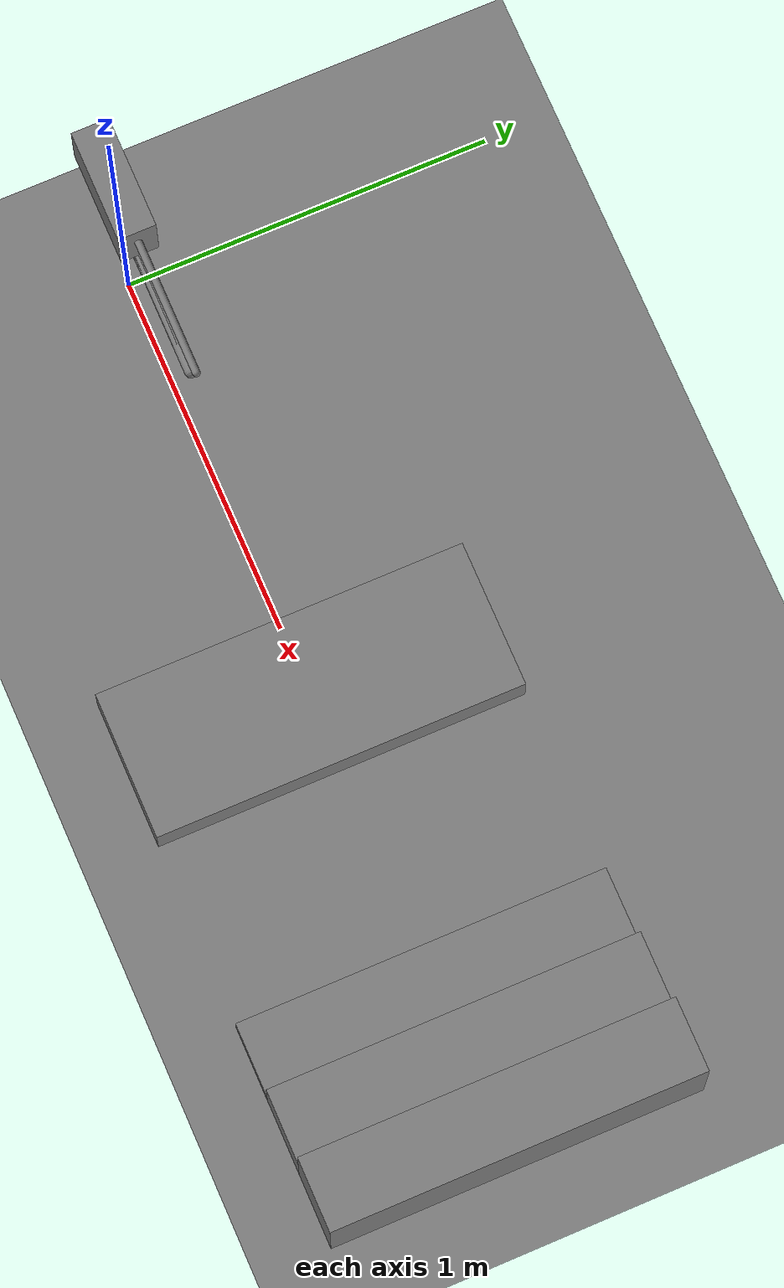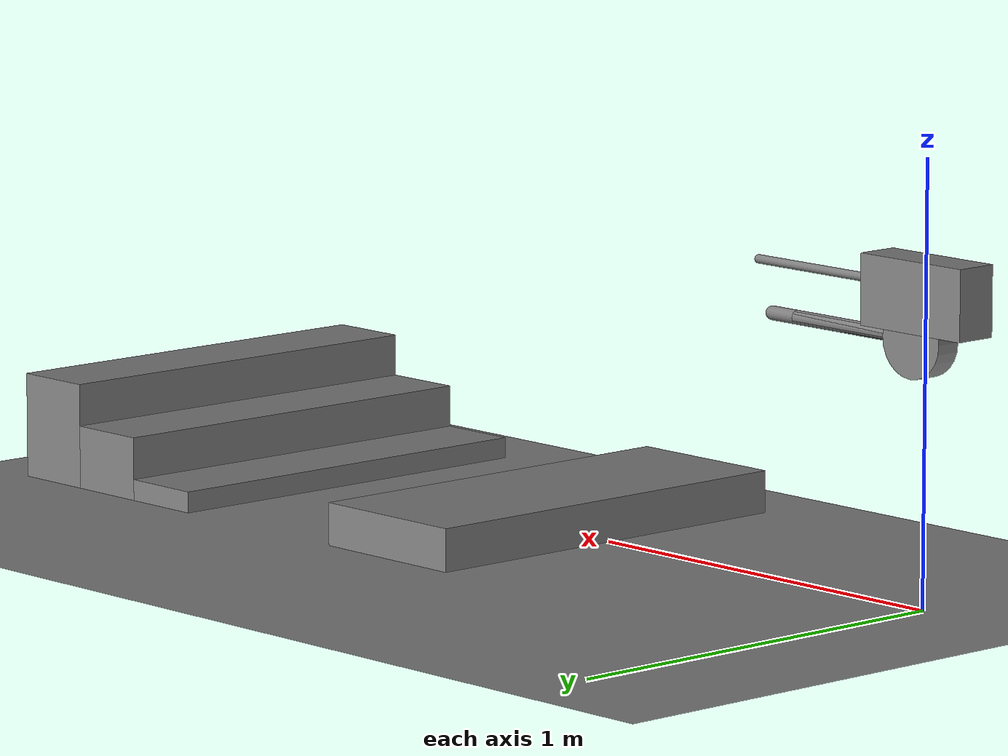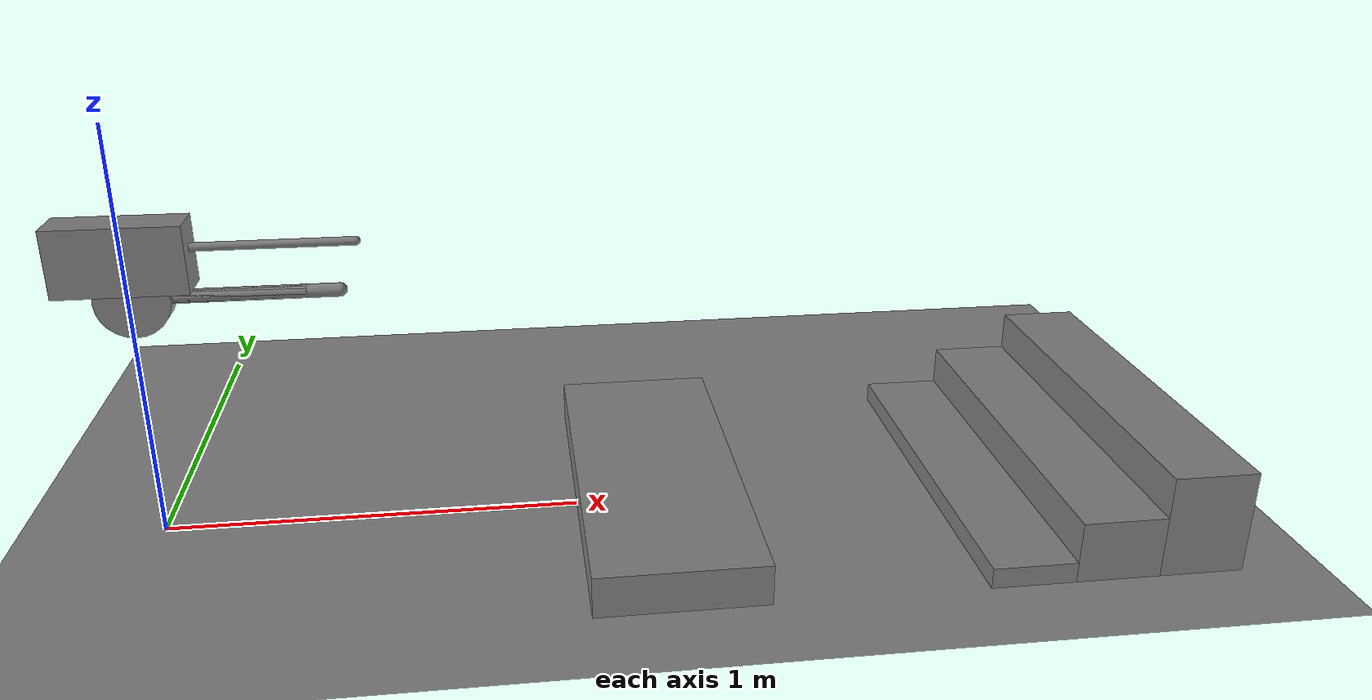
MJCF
<mujoco model="two_wheel_leg_planar">

  <!-- Units: meters, kg, seconds -->
  <compiler angle="degree" coordinate="local"/>
  <option timestep="0.001" integrator="RK4" solver="Newton" gravity="0 0 -9.81"/>

  <!-- Defaults: keep contact stable early -->
  <default>
    <joint damping="0.2" armature="0.0" limited="true"/>
    <geom contype="1" conaffinity="1" density="500" friction="1.0 0.01 0.001" solref="0.003 1" solimp="0.9 0.95 0.001" />
    <motor ctrlrange="-1 1" ctrllimited="true"/>
  </default>

  <asset>
    <!-- Optional: add meshes later for visuals only -->
  </asset>

  <worldbody>

    <!-- Ground -->
    <geom name="ground" type="plane" pos="0 0 0" size="5 5 0.1" friction="1.2 0.02 0.002"/>

    <!-- A curb (toggle contype/conaffinity to 0 to disable) -->
    <geom name="curb" type="box" pos="1.2 0 0.05" size="0.2 0.5 0.05" friction="1.2 0.02 0.002"/>

    <!-- Simple stairs: three steps (edit rise/run here) -->
    <!-- Step rise = 0.05, run = 0.20 -->
    <geom name="step1" type="box" pos="2.0 0 0.025" size="0.10 0.50 0.025"/>
    <geom name="step2" type="box" pos="2.2 0 0.075" size="0.10 0.50 0.075"/>
    <geom name="step3" type="box" pos="2.4 0 0.125" size="0.10 0.50 0.125"/>

    <!-- Robot root: planar floating base -->
    <body name="torso" pos="0 0 0.60">

      <!-- Planar base: x, z, pitch (about y) -->
      <joint name="base_x" type="slide" axis="1 0 0" limited="false"/>
      <joint name="base_z" type="slide" axis="0 0 1" limited="false"/>
      <joint name="base_pitch" type="hinge" axis="0 1 0" limited="false"/>

      <!-- Put real mass/inertia here once you export from CAD -->
      <inertial pos="0 0 0" mass="6.0" diaginertia="0.10 0.10 0.10"/>

      <!-- Optional torso collision (keep simple) -->
      <geom name="torso_geom" type="box" pos="0 0 0.10" size="0.15 0.05 0.08" contype="1" conaffinity="1"/>

      <!-- Reference sites on torso -->
      <site name="H"  pos="0.00000 0 0.00000" size="0.006" rgba="0 0 0 1"/>
      <site name="Bc" pos="0.09893 0 0.11576" size="0.006" rgba="1 0 0 1"/>

      <!-- IMU site (you can move it to match your real IMU location) -->
      <site name="imu" pos="0 0 0.12" size="0.006"/>

      <!-- Upper link: rigid bar H-K -->
      <body name="upper" pos="0 0 0">

        <!-- Hip hinge -->
        <joint name="hip" type="hinge" axis="0 1 0" range="23.95 61.04"/>

        <!-- Fill these from CAD later -->
        <inertial pos="0.18 0 0" mass="2.0" diaginertia="0.05 0.05 0.01"/>

        <!-- Geometry constants (encoded directly as positions) -->
       <site name="K" pos="0.39609 0 0" size="0.006" rgba="0 0 1 1"/>

        <!-- Upper link geometry: bar H -> K -->
        <geom name="upper_capsule" type="capsule"
              fromto="0 0 0   0.39609 0 0" size="0.016"/>

        <!-- Lower bar: bar W-K-C -->
       <body name="lower" pos="0.39609 0 0">

          <!-- Knee hinge -->
          <joint name="knee" type="hinge" axis="0 1 0" range="-170 170"/>
          <inertial pos="0.19 0 0" mass="1.5" diaginertia="0.03 0.03 0.008"/>

        <!-- W - K - C are on the same rigid body; K is this body's origin -->
        <site name="W" pos="-0.37996 0 0" size="0.006" rgba="0.6 0.6 0.6 1"/>
        <site name="C" pos=" 0.07506 0 0" size="0.006" rgba="0 1 0 1"/>

        <!-- collision spanning W->C -->
        <geom name="lower_capsule" type="capsule"
              fromto="-0.37996 0 0   0.07506 0 0" size="0.016"/>

          <!-- Wheel at W -->
          <body name="wheel" pos="-0.37996 0 0">

            <joint name="wheel" type="hinge" axis="0 1 0" range="-100000 100000"/>

            <!-- IMPORTANT: replace WHEEL_RADIUS and HALF_WIDTH -->
            <!-- Cylinder axis is local z; rotate so it spins around y -->
            <geom name="wheel_geom" type="cylinder"
                  size="0.085 0.03"
                  euler="90 0 0"
                  friction="1.4 0.02 0.002"
                  density="300"/>

          </body>
        </body>
      </body>

      <!-- Rod link: Bc -> C -->
      <body name="rod" pos="0.09893 0 0.11576">
        <joint name="bc" type="hinge" axis="0 1 0" range="-180 180"/>

        <!-- BcC = 0.41762 -->
        <site name="rod_tip" pos="0.41762 0 0" size="0.006"/>
        <geom name="rod_capsule" type="capsule"
              fromto="0 0 0   0.41762 0 0" size="0.010"/>
      </body>

    </body>
  </worldbody>

  <!-- Close the kinematic loop: rod tip must coincide with point C on upper -->
<equality>
  <connect name="loop_BcC" site1="C" site2="rod_tip"
           solref="0.002 1" solimp="0.9 0.95 0.001"/>
</equality>

  <!-- Actuators: torque control (scale via gear). Replace gears with your max torques -->
  <actuator>
    <!-- ctrl = [-1,1], gear = max torque (Nm) -->
    <motor name="act_hip"   joint="hip"   gear="60"/>
    <motor name="act_wheel" joint="wheel" gear="25"/>
    <!-- If knee is actuated, enable this -->
  </actuator>

  <!-- Sensors (optional but useful) -->
  <sensor>
    <gyro name="gyro" site="imu"/>
    <accelerometer name="acc" site="imu"/>
    <jointpos name="q_hip" joint="hip"/>
    <jointvel name="qd_hip" joint="hip"/>
    <jointpos name="q_knee" joint="knee"/>
    <jointvel name="qd_knee" joint="knee"/>
    <jointpos name="q_wheel" joint="wheel"/>
    <jointvel name="qd_wheel" joint="wheel"/>
  </sensor>

  <!-- Initial pose: hip/rod angles chosen to satisfy the rod length for HC=0.32103 -->
<keyframe>
  <!-- qpos order: base_x base_z base_pitch hip knee wheel bc -->

  <key name="r0"
       qpos="-0.0045 0.3744 0   -23.9507  43.8099 0  -36.9585"/>

  <key name="r25"
       qpos="-0.0062 0.4855 0   -32.1372  62.1189 0  -43.7862"/>

  <key name="r50"
       qpos="-0.0047 0.5721 0   -39.7871  77.7557 0  -50.6736"/>

  <key name="r75"
       qpos="-0.0017 0.6429 0   -46.9235  91.8695 0  -57.4557"/>

  <key name="r100"
       qpos="-0.0050 0.7625 0   -61.0409 121.6084 0  -71.8969"/>
</keyframe>

</mujoco>
